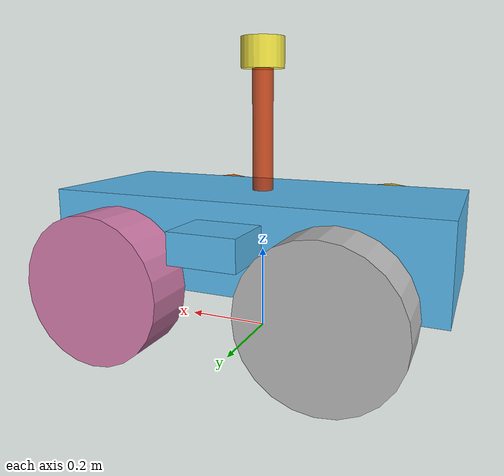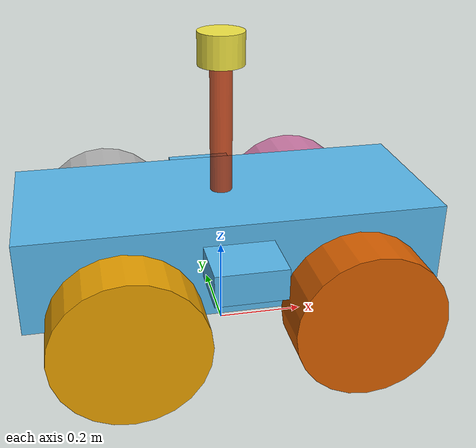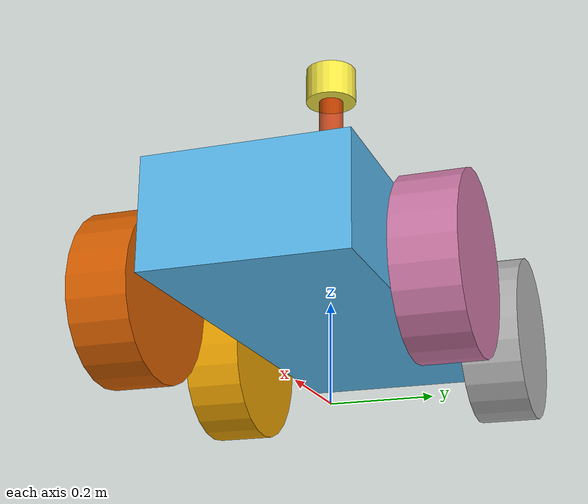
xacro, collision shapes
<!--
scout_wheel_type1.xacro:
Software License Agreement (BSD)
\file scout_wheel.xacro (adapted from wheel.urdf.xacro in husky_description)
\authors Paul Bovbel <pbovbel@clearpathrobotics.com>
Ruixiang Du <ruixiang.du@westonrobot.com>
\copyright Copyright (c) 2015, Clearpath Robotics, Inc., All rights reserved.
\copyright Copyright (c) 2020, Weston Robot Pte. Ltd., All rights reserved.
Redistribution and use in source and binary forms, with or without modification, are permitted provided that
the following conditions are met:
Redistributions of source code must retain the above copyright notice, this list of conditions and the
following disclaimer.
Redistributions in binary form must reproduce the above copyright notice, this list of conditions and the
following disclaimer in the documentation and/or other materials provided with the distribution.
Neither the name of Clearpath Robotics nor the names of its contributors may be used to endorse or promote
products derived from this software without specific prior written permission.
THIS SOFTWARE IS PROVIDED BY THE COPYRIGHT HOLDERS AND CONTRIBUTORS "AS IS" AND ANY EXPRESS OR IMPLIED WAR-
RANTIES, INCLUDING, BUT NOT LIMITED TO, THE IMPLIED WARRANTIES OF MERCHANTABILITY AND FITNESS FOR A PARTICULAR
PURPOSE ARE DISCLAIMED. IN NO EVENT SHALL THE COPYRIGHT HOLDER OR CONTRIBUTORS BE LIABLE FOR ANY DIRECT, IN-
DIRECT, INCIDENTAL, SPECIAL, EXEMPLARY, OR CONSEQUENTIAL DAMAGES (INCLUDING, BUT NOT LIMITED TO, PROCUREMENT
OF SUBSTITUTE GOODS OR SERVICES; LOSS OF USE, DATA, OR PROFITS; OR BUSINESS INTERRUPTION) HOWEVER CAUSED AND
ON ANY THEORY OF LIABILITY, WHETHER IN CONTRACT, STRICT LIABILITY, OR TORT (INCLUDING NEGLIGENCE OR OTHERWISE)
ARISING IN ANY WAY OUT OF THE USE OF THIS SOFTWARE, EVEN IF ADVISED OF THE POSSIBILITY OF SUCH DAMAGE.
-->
<?xml version="1.0"?>
<robot xmlns:xacro="http://www.ros.org/wiki/xacro" name="example">
  <xacro:arg name="gpu" default="false"/>
  <xacro:property name="gpu" value="$(arg gpu)" />
  <xacro:arg name="organize_cloud" default="false"/>
  <xacro:property name="organize_cloud" value="$(arg organize_cloud)" />

 <!-- 属性封装 -->
  <xacro:property name="M_PI" value="3.14159"/>
  <xacro:property name="base_x_size" value="0.9250000" />
  <xacro:property name="base_y_size" value="0.380000" />
  <xacro:property name="base_z_size" value="0.210000" />
  <xacro:property name="wheelbase" value="0.498" />
  <xacro:property name="track" value="0.58306" />   <!-- track车轮间距 -->
  <xacro:property name="wheel_vertical_offset" value="-0.0702" />
  <xacro:property name="wheel_length" value="1.1653e-01" />
  <xacro:property name="wheel_radius" value="1.6459e-01" />
  <xacro:property name="footprint_hight" value="0.234845" />
  <xacro:include filename="$(find velodyne_description)/urdf/inertial.xacro"/>    <!-- 引用惯性矩阵计算 -->

  <!-- Base Footprint -->
  <link name="base_footprint" />

  <!-- Base Link -->
  <joint name="footprint" type="fixed" >
   <parent link="base_footprint" />
    <child link="base_link" />
    <origin xyz="0 0 ${footprint_hight}" rpy="0 0 0" />
  </joint>
  <link name="base_link" >
  <visual>
        <origin xyz="0 0 0" rpy="0 0 0" />
        <geometry>
            <mesh filename="package://velodyne_description/meshes/Scout_meshes/base_link.dae" />
        </geometry>
    </visual>
 <collision>
        <origin xyz="0 0 0.008" rpy="0 0 0" />
        <geometry>
            <box size="${base_x_size} ${base_y_size} ${base_z_size}"/>
        </geometry>
    </collision>
        <collision>
        <origin xyz="0 0 ${base_z_size/6}" rpy="0 0 0" />
        <geometry>
            <box size="${base_x_size/6} ${base_y_size*1.65} ${base_z_size/3}"/>
        </geometry>
    </collision>
            <inertial>
            <mass value="40" />
            <origin xyz="0.0 0.0 0.0" />
            <inertia ixx="2.288641" ixy="0" ixz="0" iyy="5.103976" iyz="0" izz="3.431465" />
        </inertial>
  </link>

  <!-- 雷达支架 -->
  <xacro:property name="support_length" value="0.30" /> <!-- 支架长度 -->
  <xacro:property name="support_radius" value="0.025" /> <!-- 支架半径 -->
  <xacro:property name="support_x_size" value="0.0" /> <!-- 支架安装的x坐标 -->
  <xacro:property name="support_y_size" value="0.0" /> <!-- 支架安装的y坐标 -->
  <xacro:property name="support_z_size" value="${base_z_size / 2 + support_length / 2}" /> <!-- 支架安装的z坐标:底盘高度 / 2 + 支架高度 / 2  -->
  <xacro:property name="support_m" value="0.02" /> <!-- 支架质量 -->
  <link name="support">
      <visual>
          <geometry>
              <cylinder radius="${support_radius}" length="${support_length}" />
          </geometry>
          <origin xyz="0.0 0.0 0.0" rpy="0.0 0.0 0.0" />
          <material name="red">
              <color rgba="0.8 0.2 0.0 0.8" />
          </material>
      </visual>
      <collision>
          <geometry>
              <cylinder radius="${support_radius}" length="${support_length}" />
          </geometry>
          <origin xyz="0.0 0.0 0.0" rpy="0.0 0.0 0.0" />
      </collision>
      <xacro:cylinder_inertial_matrix m="${support_m}" r="${support_radius}" h="${support_length}" />
  </link>

  <joint name="support_2_base_link" type="fixed">
      <parent link="base_link" />
      <child link="support" />
      <origin xyz="${support_x_size} ${support_y_size} ${support_z_size}" />
  </joint>
  <gazebo reference="support">
      <material>Gazebo/White</material>
  </gazebo>

  <!-- 引用激光雷达 -->
  <xacro:include filename="$(find velodyne_description)/urdf/VLP-16.urdf.xacro"/>
  <xacro:VLP-16 parent="base_link" name="velodyne" topic="/velodyne_points" organize_cloud="${organize_cloud}" hz="10" samples="440" gpu="${gpu}">
    <origin xyz="0 0 0.4" rpy="0 0 0" />
  </xacro:VLP-16>

  <!-- 引用车轮 -->
  <xacro:include filename="$(find velodyne_description)/urdf/scout_wheel_type1.xacro" />
  <xacro:include filename="$(find velodyne_description)/urdf/scout_wheel_type2.xacro" />
  <xacro:scout_wheel_type1 wheel_prefix="front_right">
      <origin xyz="${wheelbase/2} ${-track/2} ${wheel_vertical_offset}" rpy="3.14 0 0" />
  </xacro:scout_wheel_type1>
  <xacro:scout_wheel_type2 wheel_prefix="front_left">
      <origin xyz="${wheelbase/2} ${track/2} ${wheel_vertical_offset}" rpy="0 0 0" />
  </xacro:scout_wheel_type2>
  <xacro:scout_wheel_type1 wheel_prefix="rear_left">
      <origin xyz="${-wheelbase/2} ${track/2} ${wheel_vertical_offset}" rpy="0 0 0" />
  </xacro:scout_wheel_type1>
  <xacro:scout_wheel_type2 wheel_prefix="rear_right">
      <origin xyz="${-wheelbase/2} ${-track/2} ${wheel_vertical_offset}" rpy="3.14 0 0" />
  </xacro:scout_wheel_type2>

  <!-- 引用控制插件 -->
  <xacro:include filename="$(find velodyne_description)/urdf/move.xacro"/>

  <!-- 引用imu插件 -->
  <xacro:include filename="$(find velodyne_description)/urdf/imu.xacro"/>

</robot>

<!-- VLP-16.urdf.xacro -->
<robot xmlns:xacro="http://www.ros.org/wiki/xacro" name="VLP-16">
  <xacro:property name="M_PI" value="3.1415926535897931" />
  <xacro:macro name="VLP-16" params="*origin is_sim:=true parent:=base_link name:=velodyne tf_prefix:='' topic:=/velodyne_points organize_cloud:=false hz:=10 lasers:=16 samples:=1875 collision_range:=0.3 min_range:=0.0 max_range:=100.0 noise:=0.008 min_angle:=-${M_PI} max_angle:=${M_PI} gpu:=false">

    <joint name="${name}_base_mount_joint" type="fixed">
      <xacro:insert_block name="origin" />
      <parent link="${parent}"/>
      <child link="${name}_base_link"/>
    </joint>

    <link name="${name}_base_link">
      <inertial>
        <mass value="0.83"/>
        <origin xyz="0 0 0.03585"/>
        <inertia ixx="${(0.83 * (3.0*0.0516*0.0516 + 0.0717*0.0717)) / 12.0}" ixy="0" ixz="0"
          iyy="${(0.83 * (3.0*0.0516*0.0516 + 0.0717*0.0717)) / 12.0}" iyz="0"
          izz="${0.5 * 0.83 * (0.0516*0.0516)}"/>
      </inertial>
      <visual>
        <geometry>
          <mesh filename="package://velodyne_description/meshes/VLP16_base_1.dae" />
        </geometry>
      </visual>
      <visual>
        <geometry>
          <mesh filename="package://velodyne_description/meshes/VLP16_base_2.dae" />
        </geometry>
      </visual>
      <collision>
        <origin rpy="0 0 0" xyz="0 0 0.03585"/>
        <geometry>
          <cylinder radius="0.0516" length="0.0717"/>
        </geometry>
      </collision>
    </link>

    <joint name="${name}_base_scan_joint" type="fixed" >
      <origin xyz="0 0 0.0377" rpy="0 0 0" />
      <parent link="${name}_base_link" />
      <child link="${name}"/>
    </joint>

    <link name="${name}">
      <inertial>
        <mass value="0.01"/>
        <origin xyz="0 0 0"/>
        <inertia ixx="1e-7" ixy="0" ixz="0" iyy="1e-7" iyz="0" izz="1e-7"/>
      </inertial>
      <visual>
        <origin xyz="0 0 -0.0377" />
        <geometry>
          <mesh filename="package://velodyne_description/meshes/VLP16_scan.dae" />
        </geometry>
      </visual>
      <collision>
        <geometry>
          <sphere radius="0"/>
        </geometry>
      </collision>
    </link>

    <!-- Gazebo requires the velodyne_gazebo_plugins package -->
    <xacro:if value="${is_sim}">
        <gazebo reference="${name}">
            <xacro:if value="${gpu}">
                <sensor type="gpu_ray" name="${name}-VLP16">
                <pose>0 0 0 0 0 0</pose>
                <visualize>false</visualize>
                <update_rate>${hz}</update_rate>
                <ray>
                    <scan>
                    <horizontal>
                        <samples>${samples}</samples>
                        <resolution>1</resolution>
                        <min_angle>${min_angle}</min_angle>
                        <max_angle>${max_angle}</max_angle>
                    </horizontal>
                    <vertical>
                        <samples>${lasers}</samples>
                        <resolution>1</resolution>
                        <min_angle>-${15.0*M_PI/180.0}</min_angle>
                        <max_angle> ${15.0*M_PI/180.0}</max_angle>
                    </vertical>
                    </scan>
                    <range>
                    <min>${collision_range}</min>
                    <max>${max_range+1}</max>
                    <resolution>0.001</resolution>
                    </range>
                    <noise>
                    <type>gaussian</type>
                    <mean>0.0</mean>
                    <stddev>0.0</stddev>
                    </noise>
                </ray>
                <plugin name="gazebo_ros_laser_controller" filename="libgazebo_ros_velodyne_laser.so">
                    <ros>
                    <namespace>/${name}</namespace>
                    <remapping>~/out:=${topic}</remapping>
                    </ros>
                    <tf_prefix>${tf_prefix}</tf_prefix>
                    <frame_name>${name}</frame_name>
                    <organize_cloud>${organize_cloud}</organize_cloud>
                    <min_range>${min_range}</min_range>
                    <max_range>${max_range}</max_range>
                    <gaussian_noise>${noise}</gaussian_noise>
                </plugin>
                </sensor>
            </xacro:if>
            <xacro:unless value="${gpu}">
                <sensor type="ray" name="${name}-VLP16">
                <pose>0 0 0 0 0 0</pose>
                <visualize>false</visualize>
                <update_rate>${hz}</update_rate>
                <ray>
                    <scan>
                    <horizontal>
                        <samples>${samples}</samples>
                        <resolution>1</resolution>
                        <min_angle>${min_angle}</min_angle>
                        <max_angle>${max_angle}</max_angle>
                    </horizontal>
                    <vertical>
                        <samples>${lasers}</samples>
                        <resolution>1</resolution>
                        <min_angle>-${15.0*M_PI/180.0}</min_angle>
                        <max_angle> ${15.0*M_PI/180.0}</max_angle>
                    </vertical>
                    </scan>
                    <range>
                    <min>${collision_range}</min>
                    <max>${max_range+1}</max>
                    <resolution>0.001</resolution>
                    </range>
                    <noise>
                    <type>gaussian</type>
                    <mean>0.0</mean>
                    <stddev>0.0</stddev>
                    </noise>
                </ray>
                <plugin name="gazebo_ros_laser_controller" filename="libgazebo_ros_velodyne_laser.so">
                    <ros>
                    <namespace>/${name}</namespace>
                    <remapping>~/out:=${topic}</remapping>
                    </ros>
                    <tf_prefix>${tf_prefix}</tf_prefix>
                    <frame_name>${name}</frame_name>
                    <organize_cloud>${organize_cloud}</organize_cloud>
                    <min_range>${min_range}</min_range>
                    <max_range>${max_range}</max_range>
                    <gaussian_noise>${noise}</gaussian_noise>
                </plugin>
                </sensor>
            </xacro:unless>
        </gazebo>
    </xacro:if>

  </xacro:macro>
</robot>

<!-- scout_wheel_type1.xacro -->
<robot xmlns:xacro="http://ros.org/wiki/xacro" name="scout_wheel">

    <xacro:macro name="scout_wheel_type1" params="wheel_prefix *joint_pose">
        <link name="${wheel_prefix}_wheel_link">
            <inertial>
                <mass value="3" />
                <origin xyz="0 0 0" />
                <inertia ixx="0.7171" ixy="0" ixz="0" iyy="0.1361" iyz="0" izz="0.7171" />
            </inertial>
            <visual>
                <origin xyz="0 0 0" rpy="0 0 0" />
                <geometry>
                    <mesh filename="package://velodyne_description/meshes/Scout_meshes/wheel_type1.dae" />
                </geometry>
            </visual>
            <collision>
                <origin xyz="0 0 0" rpy="${M_PI/2} 0 0" />
                <geometry>
                    <cylinder length="${wheel_length}" radius="${wheel_radius}" />
                </geometry>
            </collision>
        </link>

        <joint name="${wheel_prefix}_wheel" type="continuous">
            <parent link="base_link"/>
            <child link="${wheel_prefix}_wheel_link"/>
            <xacro:insert_block name="joint_pose"/>
            <axis xyz="0 -1 0" rpy="0 0 0" />
        </joint>
    </xacro:macro>

</robot>

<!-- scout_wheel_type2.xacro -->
<robot xmlns:xacro="http://ros.org/wiki/xacro" name="scout_wheel">

    <xacro:macro name="scout_wheel_type2" params="wheel_prefix *joint_pose">
        <link name="${wheel_prefix}_wheel_link">
            <inertial>
                <mass value="3" />
                <origin xyz="0 0 0" />
                <inertia ixx="0.7171" ixy="0" ixz="0" iyy="0.1361" iyz="0" izz="0.7171" />
            </inertial>
            <visual>
                <origin xyz="0 0 0" rpy="0 0 0" />
                <geometry>
                    <mesh filename="package://velodyne_description/meshes/Scout_meshes/wheel_type2.dae" />
                </geometry>
            </visual>
            <collision>
                <origin xyz="0 0 0" rpy="${M_PI/2} 0 0" />
                <geometry>
                    <cylinder length="${wheel_length}" radius="${wheel_radius}" />
                </geometry>
            </collision>
        </link>

        <joint name="${wheel_prefix}_wheel" type="continuous">
            <parent link="base_link"/>
            <child link="${wheel_prefix}_wheel_link"/>
            <xacro:insert_block name="joint_pose"/>
            <axis xyz="0 -1 0" rpy="0 0 0" />
        </joint>
    </xacro:macro>

</robot>

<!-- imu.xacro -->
<robot name="imu" xmlns:xacro="http://wiki.ros.org/xacro">
    <xacro:property name="imu_offset_x" value="0.05" />
    <xacro:property name="imu_offset_y" value="0" />
    <xacro:property name="imu_offset_z" value="0.105" />
    <xacro:property name="imu_size"     value="0.01" />
    <xacro:property name="imu_m" value="0.01" /> <!-- imu质量 -->
    <!-- imu -->
    <joint name="imu_2_base" type="fixed">
        <origin xyz="${imu_offset_x} ${imu_offset_y} ${imu_offset_z}" rpy="0 0 0" />
        <parent link="base_link"/>
        <child link="imu"/>
    </joint>

    <link name="imu">
        <visual>
            <origin rpy="0 0 0" xyz="0 0 0" />
            <geometry>
                    <box size="${imu_size} ${imu_size} ${imu_size}"/>
            </geometry>
            <material name= "red" >
              <color rgba="1.0 0.0 0.0 1.0" />
            </material>
        </visual>
        <collision>
            <geometry>
                <box size="${imu_size} ${imu_size} ${imu_size}" />
            </geometry>
            <origin xyz="0.0 0.0 0" rpy="0.0 0.0 0.0" />
        </collision>
        <xacro:Box_inertial_matrix m = "${imu_m}" l = "${imu_size}" w = "${imu_size}" h = "${imu_size}"/>
    </link>

    <gazebo reference="imu">
        <material>Gazebo/Red</material>
        <gravity>true</gravity>
        <sensor name="imu_sensor" type="imu">
            <always_on>true</always_on>
            <update_rate>100</update_rate>
            <visualize>true</visualize>
            <topic>__default_topic__</topic>
            <plugin filename="libgazebo_ros_imu_sensor.so" name="imu_plugin">
                <topicName>imu</topicName>
                <bodyName>imu</bodyName>
                <updateRateHZ>100.0</updateRateHZ>
                <gaussianNoise>0.0</gaussianNoise>
                <xyzOffset>0 0 0</xyzOffset>
                <rpyOffset>0 0 0</rpyOffset>
                <frameName>imu</frameName>
            </plugin>
            <pose>0 0 0 0 0 0</pose>
        </sensor>
    </gazebo>

</robot>
